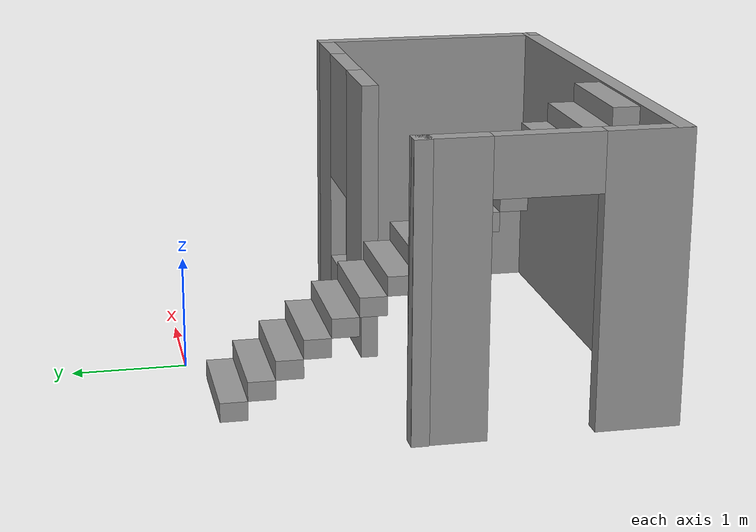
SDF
<?xml version='1.0'?>
<sdf version='1.7'>
  <model name='Untitled'>
    <pose>0.025 -1.9125 0 0 -0 0</pose>
    <link name='Stairs_0'>
      <visual name='Stairs_0_Visual_0'>
        <pose>-0.845 1.64583 0.083333 0 -0 0</pose>
        <geometry>
          <box>
            <size>1 0.233333 0.166667</size>
          </box>
        </geometry>
        <material>
          <script>
            <uri>file://media/materials/scripts/gazebo.material</uri>
            <name>Gazebo/Grey</name>
          </script>
          <ambient>1 1 1 1</ambient>
        </material>
        <meta>
          <layer>0</layer>
        </meta>
      </visual>
      <collision name='Stairs_0_Collision_0'>
        <geometry>
          <box>
            <size>1 0.233333 0.166667</size>
          </box>
        </geometry>
        <pose>-0.845 1.64583 0.083333 0 -0 0</pose>
      </collision>
      <visual name='Stairs_0_Visual_1'>
        <pose>-0.845 1.4125 0.25 0 -0 0</pose>
        <geometry>
          <box>
            <size>1 0.233333 0.166667</size>
          </box>
        </geometry>
        <material>
          <script>
            <uri>file://media/materials/scripts/gazebo.material</uri>
            <name>Gazebo/Grey</name>
          </script>
          <ambient>1 1 1 1</ambient>
        </material>
        <meta>
          <layer>0</layer>
        </meta>
      </visual>
      <collision name='Stairs_0_Collision_1'>
        <geometry>
          <box>
            <size>1 0.233333 0.166667</size>
          </box>
        </geometry>
        <pose>-0.845 1.4125 0.25 0 -0 0</pose>
      </collision>
      <visual name='Stairs_0_Visual_2'>
        <pose>-0.845 1.17917 0.416667 0 -0 0</pose>
        <geometry>
          <box>
            <size>1 0.233333 0.166667</size>
          </box>
        </geometry>
        <material>
          <script>
            <uri>file://media/materials/scripts/gazebo.material</uri>
            <name>Gazebo/Grey</name>
          </script>
          <ambient>1 1 1 1</ambient>
        </material>
        <meta>
          <layer>0</layer>
        </meta>
      </visual>
      <collision name='Stairs_0_Collision_2'>
        <geometry>
          <box>
            <size>1 0.233333 0.166667</size>
          </box>
        </geometry>
        <pose>-0.845 1.17917 0.416667 0 -0 0</pose>
      </collision>
      <visual name='Stairs_0_Visual_3'>
        <pose>-0.845 0.945834 0.583333 0 -0 0</pose>
        <geometry>
          <box>
            <size>1 0.233333 0.166667</size>
          </box>
        </geometry>
        <material>
          <script>
            <uri>file://media/materials/scripts/gazebo.material</uri>
            <name>Gazebo/Grey</name>
          </script>
          <ambient>1 1 1 1</ambient>
        </material>
        <meta>
          <layer>0</layer>
        </meta>
      </visual>
      <collision name='Stairs_0_Collision_3'>
        <geometry>
          <box>
            <size>1 0.233333 0.166667</size>
          </box>
        </geometry>
        <pose>-0.845 0.945834 0.583333 0 -0 0</pose>
      </collision>
      <visual name='Stairs_0_Visual_4'>
        <pose>-0.845 0.7125 0.75 0 -0 0</pose>
        <geometry>
          <box>
            <size>1 0.233333 0.166667</size>
          </box>
        </geometry>
        <material>
          <script>
            <uri>file://media/materials/scripts/gazebo.material</uri>
            <name>Gazebo/Grey</name>
          </script>
          <ambient>1 1 1 1</ambient>
        </material>
        <meta>
          <layer>0</layer>
        </meta>
      </visual>
      <collision name='Stairs_0_Collision_4'>
        <geometry>
          <box>
            <size>1 0.233333 0.166667</size>
          </box>
        </geometry>
        <pose>-0.845 0.7125 0.75 0 -0 0</pose>
      </collision>
      <visual name='Stairs_0_Visual_5'>
        <pose>-0.845 0.479167 0.916667 0 -0 0</pose>
        <geometry>
          <box>
            <size>1 0.233333 0.166667</size>
          </box>
        </geometry>
        <material>
          <script>
            <uri>file://media/materials/scripts/gazebo.material</uri>
            <name>Gazebo/Grey</name>
          </script>
          <ambient>1 1 1 1</ambient>
        </material>
        <meta>
          <layer>0</layer>
        </meta>
      </visual>
      <collision name='Stairs_0_Collision_5'>
        <geometry>
          <box>
            <size>1 0.233333 0.166667</size>
          </box>
        </geometry>
        <pose>-0.845 0.479167 0.916667 0 -0 0</pose>
      </collision>
      <visual name='Stairs_0_Visual_6'>
        <pose>-0.845 0.245834 1.08333 0 -0 0</pose>
        <geometry>
          <box>
            <size>1 0.233333 0.166667</size>
          </box>
        </geometry>
        <material>
          <script>
            <uri>file://media/materials/scripts/gazebo.material</uri>
            <name>Gazebo/Grey</name>
          </script>
          <ambient>1 1 1 1</ambient>
        </material>
        <meta>
          <layer>0</layer>
        </meta>
      </visual>
      <collision name='Stairs_0_Collision_6'>
        <geometry>
          <box>
            <size>1 0.233333 0.166667</size>
          </box>
        </geometry>
        <pose>-0.845 0.245834 1.08333 0 -0 0</pose>
      </collision>
      <visual name='Stairs_0_Visual_7'>
        <pose>-0.845 0.0125 1.25 0 -0 0</pose>
        <geometry>
          <box>
            <size>1 0.233333 0.166667</size>
          </box>
        </geometry>
        <material>
          <script>
            <uri>file://media/materials/scripts/gazebo.material</uri>
            <name>Gazebo/Grey</name>
          </script>
          <ambient>1 1 1 1</ambient>
        </material>
        <meta>
          <layer>0</layer>
        </meta>
      </visual>
      <collision name='Stairs_0_Collision_7'>
        <geometry>
          <box>
            <size>1 0.233333 0.166667</size>
          </box>
        </geometry>
        <pose>-0.845 0.0125 1.25 0 -0 0</pose>
      </collision>
      <visual name='Stairs_0_Visual_8'>
        <pose>-0.845 -0.220833 1.41667 0 -0 0</pose>
        <geometry>
          <box>
            <size>1 0.233333 0.166667</size>
          </box>
        </geometry>
        <material>
          <script>
            <uri>file://media/materials/scripts/gazebo.material</uri>
            <name>Gazebo/Grey</name>
          </script>
          <ambient>1 1 1 1</ambient>
        </material>
        <meta>
          <layer>0</layer>
        </meta>
      </visual>
      <collision name='Stairs_0_Collision_8'>
        <geometry>
          <box>
            <size>1 0.233333 0.166667</size>
          </box>
        </geometry>
        <pose>-0.845 -0.220833 1.41667 0 -0 0</pose>
      </collision>
      <visual name='Stairs_0_Visual_9'>
        <pose>-0.845 -0.454167 1.58333 0 -0 0</pose>
        <geometry>
          <box>
            <size>1 0.233333 0.166667</size>
          </box>
        </geometry>
        <material>
          <script>
            <uri>file://media/materials/scripts/gazebo.material</uri>
            <name>Gazebo/Grey</name>
          </script>
          <ambient>1 1 1 1</ambient>
        </material>
        <meta>
          <layer>0</layer>
        </meta>
      </visual>
      <collision name='Stairs_0_Collision_9'>
        <geometry>
          <box>
            <size>1 0.233333 0.166667</size>
          </box>
        </geometry>
        <pose>-0.845 -0.454167 1.58333 0 -0 0</pose>
      </collision>
      <visual name='Stairs_0_Visual_10'>
        <pose>-0.845 -0.6875 1.75 0 -0 0</pose>
        <geometry>
          <box>
            <size>1 0.233333 0.166667</size>
          </box>
        </geometry>
        <material>
          <script>
            <uri>file://media/materials/scripts/gazebo.material</uri>
            <name>Gazebo/Grey</name>
          </script>
          <ambient>1 1 1 1</ambient>
        </material>
        <meta>
          <layer>0</layer>
        </meta>
      </visual>
      <collision name='Stairs_0_Collision_10'>
        <geometry>
          <box>
            <size>1 0.233333 0.166667</size>
          </box>
        </geometry>
        <pose>-0.845 -0.6875 1.75 0 -0 0</pose>
      </collision>
      <visual name='Stairs_0_Visual_11'>
        <pose>-0.845 -0.920833 1.91667 0 -0 0</pose>
        <geometry>
          <box>
            <size>1 0.233333 0.166667</size>
          </box>
        </geometry>
        <material>
          <script>
            <uri>file://media/materials/scripts/gazebo.material</uri>
            <name>Gazebo/Grey</name>
          </script>
          <ambient>1 1 1 1</ambient>
        </material>
        <meta>
          <layer>0</layer>
        </meta>
      </visual>
      <collision name='Stairs_0_Collision_11'>
        <geometry>
          <box>
            <size>1 0.233333 0.166667</size>
          </box>
        </geometry>
        <pose>-0.845 -0.920833 1.91667 0 -0 0</pose>
      </collision>
      <visual name='Stairs_0_Visual_12'>
        <pose>-0.845 -1.15417 2.08333 0 -0 0</pose>
        <geometry>
          <box>
            <size>1 0.233333 0.166667</size>
          </box>
        </geometry>
        <material>
          <script>
            <uri>file://media/materials/scripts/gazebo.material</uri>
            <name>Gazebo/Grey</name>
          </script>
          <ambient>1 1 1 1</ambient>
        </material>
        <meta>
          <layer>0</layer>
        </meta>
      </visual>
      <collision name='Stairs_0_Collision_12'>
        <geometry>
          <box>
            <size>1 0.233333 0.166667</size>
          </box>
        </geometry>
        <pose>-0.845 -1.15417 2.08333 0 -0 0</pose>
      </collision>
      <visual name='Stairs_0_Visual_13'>
        <pose>-0.845 -1.3875 2.25 0 -0 0</pose>
        <geometry>
          <box>
            <size>1 0.233333 0.166667</size>
          </box>
        </geometry>
        <material>
          <script>
            <uri>file://media/materials/scripts/gazebo.material</uri>
            <name>Gazebo/Grey</name>
          </script>
          <ambient>1 1 1 1</ambient>
        </material>
        <meta>
          <layer>0</layer>
        </meta>
      </visual>
      <collision name='Stairs_0_Collision_13'>
        <geometry>
          <box>
            <size>1 0.233333 0.166667</size>
          </box>
        </geometry>
        <pose>-0.845 -1.3875 2.25 0 -0 0</pose>
      </collision>
      <visual name='Stairs_0_Visual_14'>
        <pose>-0.845 -1.62083 2.41667 0 -0 0</pose>
        <geometry>
          <box>
            <size>1 0.233333 0.166667</size>
          </box>
        </geometry>
        <material>
          <script>
            <uri>file://media/materials/scripts/gazebo.material</uri>
            <name>Gazebo/Grey</name>
          </script>
          <ambient>1 1 1 1</ambient>
        </material>
        <meta>
          <layer>0</layer>
        </meta>
      </visual>
      <collision name='Stairs_0_Collision_14'>
        <geometry>
          <box>
            <size>1 0.233333 0.166667</size>
          </box>
        </geometry>
        <pose>-0.845 -1.62083 2.41667 0 -0 0</pose>
      </collision>
    </link>
    <link name='Wall_0'>
      <collision name='Wall_0_Collision'>
        <geometry>
          <box>
            <size>0.16 0.15 2.5</size>
          </box>
        </geometry>
        <pose>0 0 1.25 0 -0 0</pose>
      </collision>
      <visual name='Wall_0_Visual'>
        <pose>0 0 1.25 0 -0 0</pose>
        <geometry>
          <box>
            <size>0.16 0.15 2.5</size>
          </box>
        </geometry>
        <material>
          <script>
            <uri>file://media/materials/scripts/gazebo.material</uri>
            <name>Gazebo/Grey</name>
          </script>
          <ambient>1 1 1 1</ambient>
        </material>
        <meta>
          <layer>0</layer>
        </meta>
      </visual>
      <pose>-2.05 0.2625 0 0 -0 0</pose>
    </link>
    <link name='Wall_1'>
      <pose>-2.045 -0.7875 0 0 -0 -1.5708</pose>
      <visual name='Wall_1_Visual_0'>
        <pose>-0.8125 0 1.25 0 -0 0</pose>
        <geometry>
          <box>
            <size>0.625 0.15 2.5</size>
          </box>
        </geometry>
        <material>
          <script>
            <uri>file://media/materials/scripts/gazebo.material</uri>
            <name>Gazebo/Grey</name>
          </script>
          <ambient>1 1 1 1</ambient>
        </material>
        <meta>
          <layer>0</layer>
        </meta>
      </visual>
      <collision name='Wall_1_Collision_0'>
        <geometry>
          <box>
            <size>0.625 0.15 2.5</size>
          </box>
        </geometry>
        <pose>-0.8125 0 1.25 0 -0 0</pose>
      </collision>
      <visual name='Wall_1_Visual_1'>
        <pose>0.7625 0 1.25 0 -0 0</pose>
        <geometry>
          <box>
            <size>0.725 0.15 2.5</size>
          </box>
        </geometry>
        <material>
          <script>
            <uri>file://media/materials/scripts/gazebo.material</uri>
            <name>Gazebo/Grey</name>
          </script>
          <ambient>1 1 1 1</ambient>
        </material>
        <meta>
          <layer>0</layer>
        </meta>
      </visual>
      <collision name='Wall_1_Collision_1'>
        <geometry>
          <box>
            <size>0.725 0.15 2.5</size>
          </box>
        </geometry>
        <pose>0.7625 0 1.25 0 -0 0</pose>
      </collision>
      <visual name='Wall_1_Visual_2'>
        <pose>-0.05 0 2.25 0 -0 0</pose>
        <geometry>
          <box>
            <size>0.9 0.15 0.5</size>
          </box>
        </geometry>
        <material>
          <script>
            <uri>file://media/materials/scripts/gazebo.material</uri>
            <name>Gazebo/Grey</name>
          </script>
          <ambient>1 1 1 1</ambient>
        </material>
        <meta>
          <layer>0</layer>
        </meta>
      </visual>
      <collision name='Wall_1_Collision_2'>
        <geometry>
          <box>
            <size>0.9 0.15 0.5</size>
          </box>
        </geometry>
        <pose>-0.05 0 2.25 0 -0 0</pose>
      </collision>
    </link>
    <link name='Wall_2'>
      <collision name='Wall_2_Collision'>
        <geometry>
          <box>
            <size>4.25 0.15 2.5</size>
          </box>
        </geometry>
        <pose>0 0 1.25 0 -0 0</pose>
      </collision>
      <visual name='Wall_2_Visual'>
        <pose>0 0 1.25 0 -0 0</pose>
        <geometry>
          <box>
            <size>4.25 0.15 2.5</size>
          </box>
        </geometry>
        <material>
          <script>
            <uri>file://media/materials/scripts/gazebo.material</uri>
            <name>Gazebo/Grey</name>
          </script>
          <ambient>1 1 1 1</ambient>
        </material>
        <meta>
          <layer>0</layer>
        </meta>
      </visual>
      <pose>0.005 -1.8375 0 0 -0 0</pose>
    </link>
    <link name='Wall_3'>
      <collision name='Wall_3_Collision'>
        <geometry>
          <box>
            <size>2.25 0.15 2.5</size>
          </box>
        </geometry>
        <pose>0 0 1.25 0 -0 0</pose>
      </collision>
      <visual name='Wall_3_Visual'>
        <pose>0 0 1.25 0 -0 0</pose>
        <geometry>
          <box>
            <size>2.25 0.15 2.5</size>
          </box>
        </geometry>
        <material>
          <script>
            <uri>file://media/materials/scripts/gazebo.material</uri>
            <name>Gazebo/Grey</name>
          </script>
          <ambient>1 1 1 1</ambient>
        </material>
        <meta>
          <layer>0</layer>
        </meta>
      </visual>
      <pose>2.055 -0.7875 0 0 -0 1.5708</pose>
    </link>
    <link name='Wall_4'>
      <pose>1.005 0.2625 0 0 -0 3.14159</pose>
      <visual name='Wall_4_Visual_0'>
        <pose>-0.7525 0 1.25 0 -0 0</pose>
        <geometry>
          <box>
            <size>0.745 0.15 2.5</size>
          </box>
        </geometry>
        <material>
          <script>
            <uri>file://media/materials/scripts/gazebo.material</uri>
            <name>Gazebo/Grey</name>
          </script>
          <ambient>1 1 1 1</ambient>
        </material>
        <meta>
          <layer>0</layer>
        </meta>
      </visual>
      <collision name='Wall_4_Collision_0'>
        <geometry>
          <box>
            <size>0.745 0.15 2.5</size>
          </box>
        </geometry>
        <pose>-0.7525 0 1.25 0 -0 0</pose>
      </collision>
      <visual name='Wall_4_Visual_1'>
        <pose>0.3725 0 0.25 0 -0 0</pose>
        <geometry>
          <box>
            <size>1.505 0.15 0.5</size>
          </box>
        </geometry>
        <material>
          <script>
            <uri>file://media/materials/scripts/gazebo.material</uri>
            <name>Gazebo/Grey</name>
          </script>
          <ambient>1 1 1 1</ambient>
        </material>
        <meta>
          <layer>0</layer>
        </meta>
      </visual>
      <collision name='Wall_4_Collision_1'>
        <geometry>
          <box>
            <size>1.505 0.15 0.5</size>
          </box>
        </geometry>
        <pose>0.3725 0 0.25 0 -0 0</pose>
      </collision>
      <visual name='Wall_4_Visual_2'>
        <pose>0.7725 0 1.5 0 -0 0</pose>
        <geometry>
          <box>
            <size>0.705 0.15 2</size>
          </box>
        </geometry>
        <material>
          <script>
            <uri>file://media/materials/scripts/gazebo.material</uri>
            <name>Gazebo/Grey</name>
          </script>
          <ambient>1 1 1 1</ambient>
        </material>
        <meta>
          <layer>0</layer>
        </meta>
      </visual>
      <collision name='Wall_4_Collision_2'>
        <geometry>
          <box>
            <size>0.705 0.15 2</size>
          </box>
        </geometry>
        <pose>0.7725 0 1.5 0 -0 0</pose>
      </collision>
      <visual name='Wall_4_Visual_3'>
        <pose>0.02 0 1.9 0 -0 0</pose>
        <geometry>
          <box>
            <size>0.8 0.15 1.2</size>
          </box>
        </geometry>
        <material>
          <script>
            <uri>file://media/materials/scripts/gazebo.material</uri>
            <name>Gazebo/Grey</name>
          </script>
          <ambient>1 1 1 1</ambient>
        </material>
        <meta>
          <layer>0</layer>
        </meta>
      </visual>
      <collision name='Wall_4_Collision_3'>
        <geometry>
          <box>
            <size>0.8 0.15 1.2</size>
          </box>
        </geometry>
        <pose>0.02 0 1.9 0 -0 0</pose>
      </collision>
    </link>
    <static>1</static>
  </model>
</sdf>
